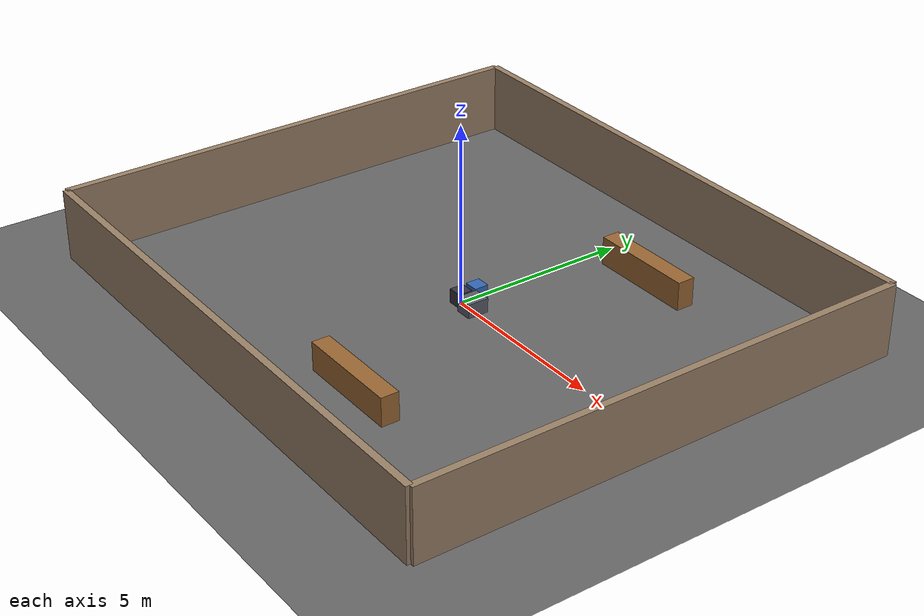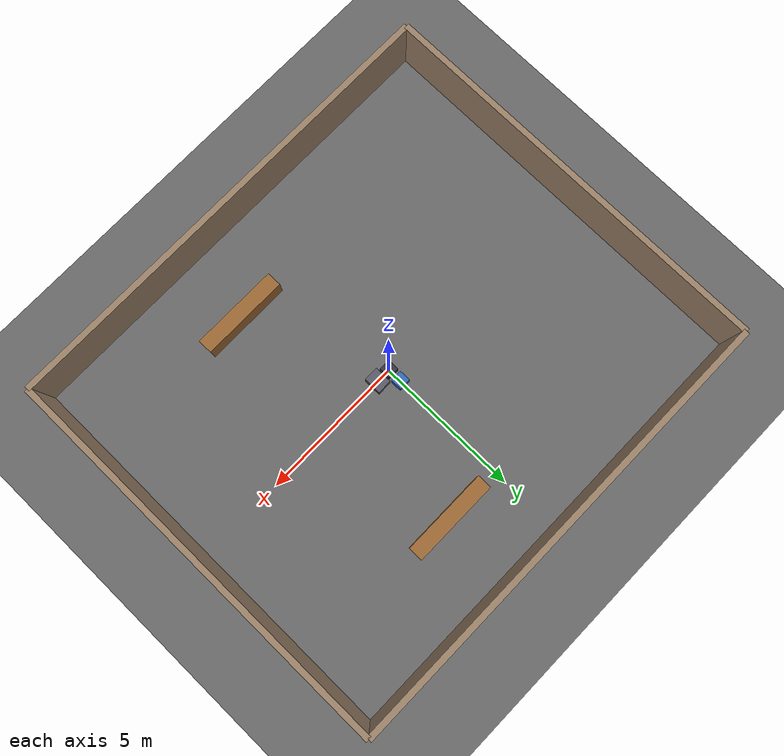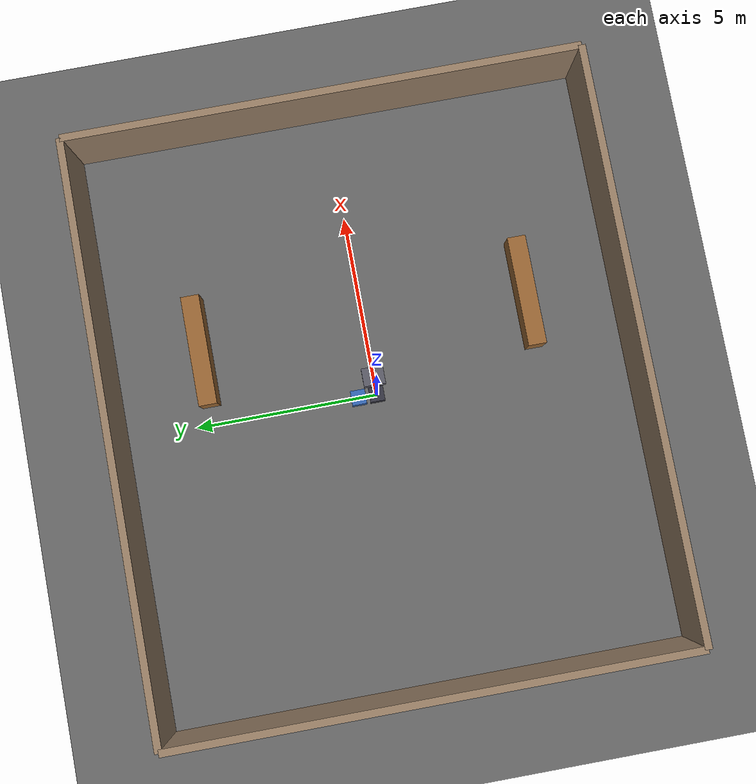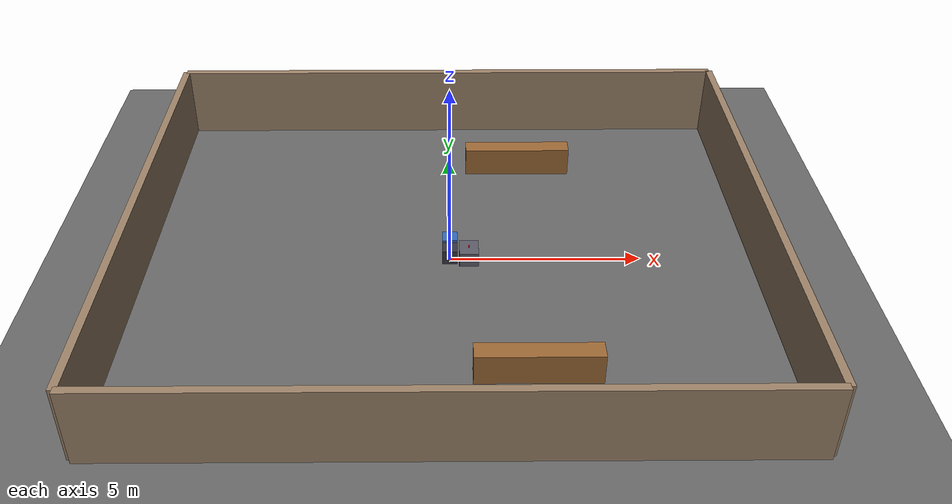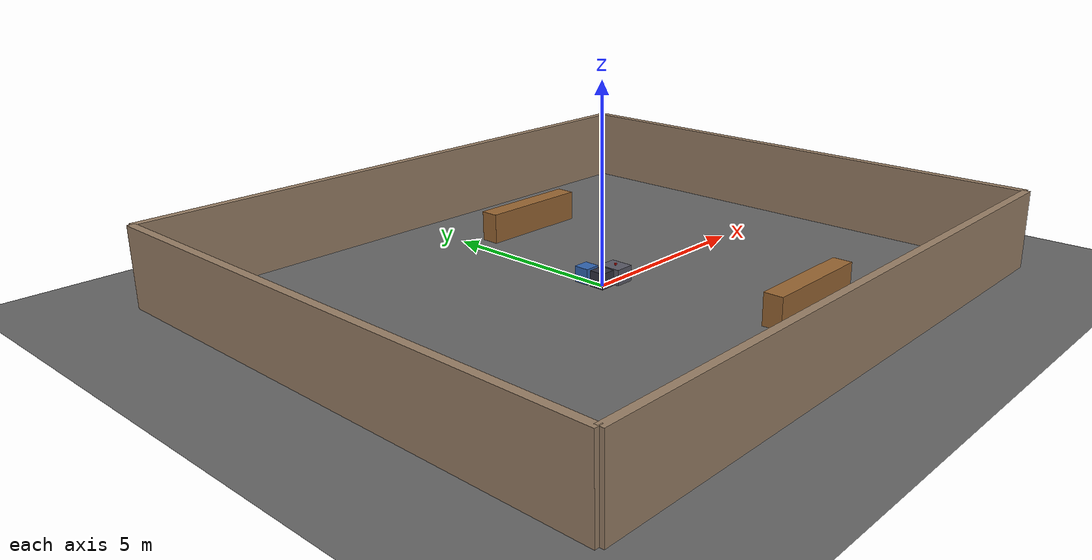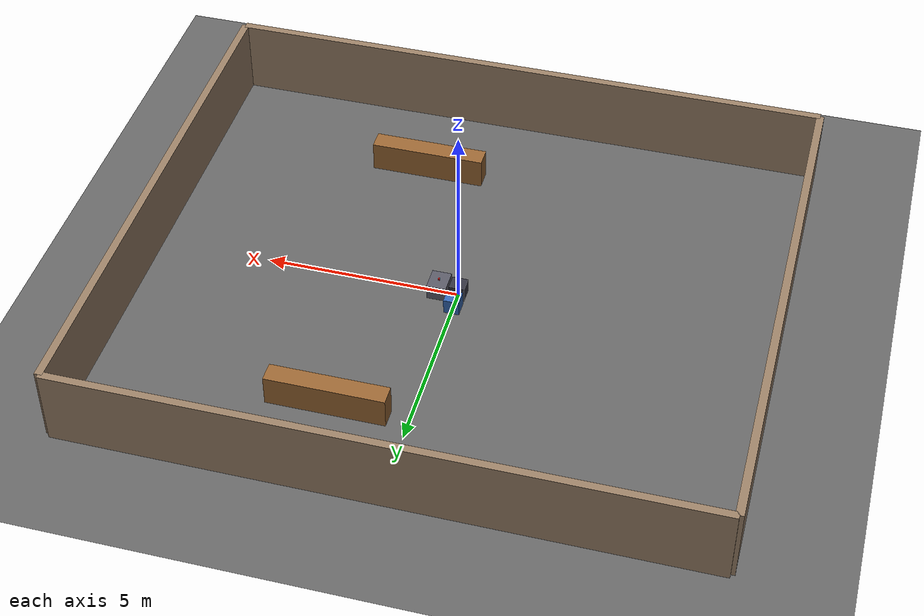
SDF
<?xml version="1.0" ?>
<sdf version="1.9">
  <world name="mecanum_warehouse">

    <physics name="1ms" type="ignored">
      <max_step_size>0.001</max_step_size>
      <real_time_factor>1.0</real_time_factor>
    </physics>

    <plugin filename="ignition-gazebo-physics-system"
            name="ignition::gazebo::systems::Physics"/>
    <plugin filename="ignition-gazebo-sensors-system"
            name="ignition::gazebo::systems::Sensors">
      <render_engine>ogre2</render_engine>
    </plugin>
    <plugin filename="ignition-gazebo-scene-broadcaster-system"
            name="ignition::gazebo::systems::SceneBroadcaster"/>
    <plugin filename="ignition-gazebo-user-commands-system"
            name="ignition::gazebo::systems::UserCommands"/>
    <plugin filename="ignition-gazebo-imu-system"
            name="ignition::gazebo::systems::Imu"/>

    <light name="sun" type="directional">
      <cast_shadows>true</cast_shadows>
      <pose>0 0 10 0 0 0</pose>
      <diffuse>0.8 0.8 0.8 1</diffuse>
      <specular>0.2 0.2 0.2 1</specular>
      <direction>-0.5 0.1 -0.9</direction>
    </light>

    <light name="overhead" type="directional">
      <pose>0 0 15 0 0 0</pose>
      <diffuse>0.6 0.6 0.6 1</diffuse>
      <specular>0.1 0.1 0.1 1</specular>
      <direction>0 0 -1</direction>
      <cast_shadows>false</cast_shadows>
    </light>

    <!-- Ground Plane -->
    <model name="ground_plane">
      <static>true</static>
      <link name="link">
        <collision name="collision">
          <geometry><plane><normal>0 0 1</normal><size>30 30</size></plane></geometry>
        </collision>
        <visual name="visual">
          <geometry><plane><normal>0 0 1</normal><size>30 30</size></plane></geometry>
          <material>
            <ambient>0.4 0.4 0.4 1</ambient>
            <diffuse>0.4 0.4 0.4 1</diffuse>
          </material>
        </visual>
      </link>
    </model>

    <!-- ROBOT TABLE / MOUNTING PEDESTAL & WORKSTATION TABLES     -->

    <!-- Robot Support Pedestal (Robot sits on top at Z = 0.4) -->
    <model name="robot_pedestal">
      <static>true</static>
      <pose>0.0 0.0 0.2 0 0 0</pose>
      <link name="link">
        <collision name="col">
          <geometry><box><size>0.4 0.4 0.4</size></box></geometry>
        </collision>
        <visual name="vis">
          <geometry><box><size>0.4 0.4 0.4</size></box></geometry>
          <material>
            <ambient>0.2 0.2 0.25 1</ambient>
            <diffuse>0.2 0.2 0.25 1</diffuse>
          </material>
        </visual>
      </link>
    </model>

    <!-- Pick Table in front of Panda arm -->
    <model name="pick_table">
      <static>true</static>
      <pose>0.5 0.0 0.2 0 0 0</pose>
      <link name="link">
        <collision name="col">
          <geometry><box><size>0.5 0.6 0.4</size></box></geometry>
        </collision>
        <visual name="vis">
          <geometry><box><size>0.5 0.6 0.4</size></box></geometry>
          <material>
            <ambient>0.35 0.35 0.4 1</ambient>
            <diffuse>0.35 0.35 0.4 1</diffuse>
          </material>
        </visual>
      </link>
    </model>

    <!-- Target Red Cube to Pick Up -->
    <model name="target_block">
      <static>false</static>
      <pose>0.5 0.0 0.425 0 0 0</pose>
      <link name="link">
        <inertial>
          <mass>0.05</mass>
          <inertia>
            <ixx>0.00001</ixx><ixy>0</ixy><ixz>0</ixz>
            <iyy>0.00001</iyy><iyz>0</iyz>
            <izz>0.00001</izz>
          </inertia>
        </inertial>
        <collision name="col">
          <geometry><box><size>0.04 0.04 0.05</size></box></geometry>
          <surface>
            <friction>
              <ode><mu>50.0</mu><mu2>50.0</mu2></ode>
            </friction>
          </surface>
        </collision>
        <visual name="vis">
          <geometry><box><size>0.04 0.04 0.05</size></box></geometry>
          <material>
            <ambient>0.9 0.1 0.1 1</ambient>
            <diffuse>0.9 0.1 0.1 1</diffuse>
          </material>
        </visual>
      </link>
    </model>

    <!-- Place Platform on the left -->
    <model name="place_table">
      <static>true</static>
      <pose>0.0 0.5 0.2 0 0 0</pose>
      <link name="link">
        <collision name="col">
          <geometry><box><size>0.4 0.4 0.4</size></box></geometry>
        </collision>
        <visual name="vis">
          <geometry><box><size>0.4 0.4 0.4</size></box></geometry>
          <material>
            <ambient>0.2 0.4 0.7 1</ambient>
            <diffuse>0.2 0.4 0.7 1</diffuse>
          </material>
        </visual>
      </link>
    </model>

    <!-- WAREHOUSE ENVIRONMENT WALLS AND STRUCTURES               -->

    <!-- South wall -->
    <model name="south_wall"><static>true</static><pose>0 -7 1.0 0 0 0</pose>
      <link name="link">
        <collision name="col"><geometry><box><size>16 0.2 2.0</size></box></geometry></collision>
        <visual name="vis"><geometry><box><size>16 0.2 2.0</size></box></geometry>
        <material><ambient>0.6 0.5 0.4 1</ambient><diffuse>0.6 0.5 0.4 1</diffuse></material></visual>
      </link>
    </model>

    <!-- North wall -->
    <model name="north_wall"><static>true</static><pose>0 7 1.0 0 0 0</pose>
      <link name="link">
        <collision name="col"><geometry><box><size>16 0.2 2.0</size></box></geometry></collision>
        <visual name="vis"><geometry><box><size>16 0.2 2.0</size></box></geometry>
        <material><ambient>0.6 0.5 0.4 1</ambient><diffuse>0.6 0.5 0.4 1</diffuse></material></visual>
      </link>
    </model>

    <!-- West wall -->
    <model name="west_wall"><static>true</static><pose>-8 0 1.0 0 0 0</pose>
      <link name="link">
        <collision name="col"><geometry><box><size>0.2 14 2.0</size></box></geometry></collision>
        <visual name="vis"><geometry><box><size>0.2 14 2.0</size></box></geometry>
        <material><ambient>0.6 0.5 0.4 1</ambient><diffuse>0.6 0.5 0.4 1</diffuse></material></visual>
      </link>
    </model>

    <!-- East wall -->
    <model name="east_wall"><static>true</static><pose>8 0 1.0 0 0 0</pose>
      <link name="link">
        <collision name="col"><geometry><box><size>0.2 14 2.0</size></box></geometry></collision>
        <visual name="vis"><geometry><box><size>0.2 14 2.0</size></box></geometry>
        <material><ambient>0.6 0.5 0.4 1</ambient><diffuse>0.6 0.5 0.4 1</diffuse></material></visual>
      </link>
    </model>

    <!-- Shelves -->
    <model name="shelf_1"><static>true</static><pose>2.0 4.5 0.4 0 0 0</pose>
      <link name="link">
        <collision name="col"><geometry><box><size>3.0 0.5 0.8</size></box></geometry></collision>
        <visual name="vis"><geometry><box><size>3.0 0.5 0.8</size></box></geometry>
        <material><ambient>0.6 0.4 0.2 1</ambient><diffuse>0.6 0.4 0.2 1</diffuse></material></visual>
      </link>
    </model>

    <model name="shelf_2"><static>true</static><pose>2.0 -4.5 0.4 0 0 0</pose>
      <link name="link">
        <collision name="col"><geometry><box><size>3.0 0.5 0.8</size></box></geometry></collision>
        <visual name="vis"><geometry><box><size>3.0 0.5 0.8</size></box></geometry>
        <material><ambient>0.6 0.4 0.2 1</ambient><diffuse>0.6 0.4 0.2 1</diffuse></material></visual>
      </link>
    </model>

  </world>
</sdf>
